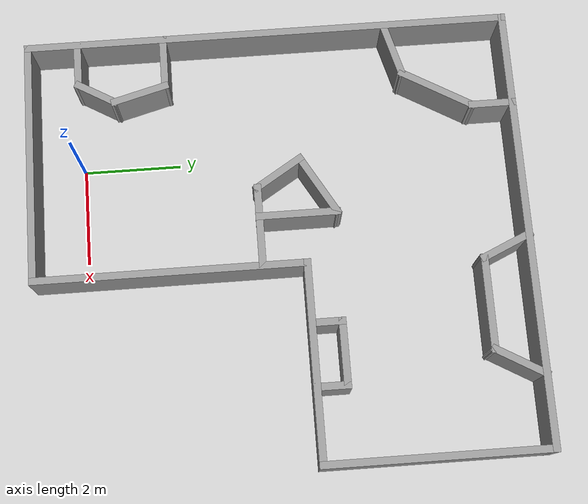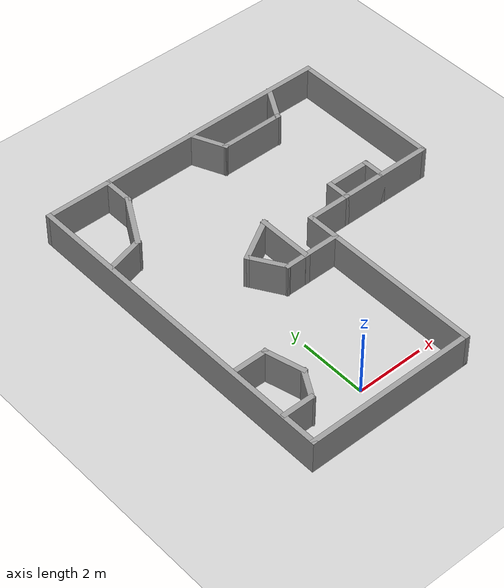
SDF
<sdf version="1.6">
 <world name="default">
  <light name="sun" type="directional">
   <pose>0 0 10 0 -0 0</pose>
   <diffuse>0.8 0.8 0.8 1</diffuse>
   <specular>0.1 0.1 0.1 1</specular>
   <attenuation>
    <range>1000</range>
    <constant>0.9</constant>
    <linear>0.01</linear>
    <quadratic>0.001</quadratic>
   </attenuation>
   <direction>-0.5 0.5 -1</direction>
  </light>
  <model name="ground_plane">
   <static>1</static>
   <link name="link">
    <collision name="collision">
     <geometry><plane><normal>0 0 1</normal><size>100 100</size></plane></geometry>
     <surface><friction><ode><mu>100</mu><mu2>50</mu2></ode></friction></surface>
    </collision>
    <visual name="visual">
     <cast_shadows>0</cast_shadows>
     <geometry><plane><normal>0 0 1</normal><size>100 100</size></plane></geometry>
     <material>
      <script><uri>file://media/materials/scripts/gazebo.material</uri><name>Gazebo/Grey</name></script>
     </material>
    </visual>
   </link>
  </model>
  <gravity>0 0 -9.8</gravity>
  <magnetic_field>6e-06 2.3e-05 -4.2e-05</magnetic_field>
  <atmosphere type="adiabatic"/>
  <physics name="default_physics" default="0" type="ode">
   <max_step_size>0.001</max_step_size>
   <real_time_factor>1</real_time_factor>
   <real_time_update_rate>1000</real_time_update_rate>
  </physics>
  <scene><ambient>0.4 0.4 0.4 1</ambient><background>0.7 0.7 0.7 1</background><shadows>1</shadows></scene>
  <spherical_coordinates>
   <surface_model>EARTH_WGS84</surface_model>
   <latitude_deg>0</latitude_deg>
   <longitude_deg>0</longitude_deg>
   <elevation>0</elevation>
   <heading_deg>0</heading_deg>
  </spherical_coordinates>
  <model name="Untitled">
   <pose>2 4.01385 0 0 -0 0</pose>
   <link name="Wall_0">
    <collision name="Wall_0_Collision">
     <geometry><box><size>10.15 0.15 1</size></box></geometry>
     <pose>0 0 0.5 0 -0 0</pose>
    </collision>
    <visual name="Wall_0_Visual">
     <pose>0 0 0.5 0 -0 0</pose>
     <geometry><box><size>10.15 0.15 1</size></box></geometry>
     <material>
      <script><uri>file://media/materials/scripts/gazebo.material</uri><name>Gazebo/Grey</name></script>
      <ambient>1 1 1 1</ambient>
     </material>
    </visual>
    <pose>-4.5 -0.013848 0 0 0 -1.5708</pose>
   </link>
   <link name="Wall_1">
    <collision name="Wall_1_Collision">
     <geometry><box><size>5.15 0.15 1</size></box></geometry>
     <pose>0 0 0.5 0 -0 0</pose>
    </collision>
    <visual name="Wall_1_Visual">
     <pose>0 0 0.5 0 -0 0</pose>
     <geometry><box><size>5.15 0.15 1</size></box></geometry>
     <material>
      <script><uri>file://media/materials/scripts/gazebo.material</uri><name>Gazebo/Grey</name></script>
      <ambient>1 1 1 1</ambient>
     </material>
    </visual>
    <pose>-2 -5.01385 0 0 -0 0</pose>
   </link>
   <link name="Wall_10">
    <collision name="Wall_10_Collision">
     <geometry><box><size>1 0.15 1</size></box></geometry>
     <pose>0 0 0.5 0 -0 0</pose>
    </collision>
    <visual name="Wall_10_Visual">
     <pose>0 0 0.5 0 -0 0</pose>
     <geometry><box><size>1 0.15 1</size></box></geometry>
     <material>
      <script><uri>file://media/materials/scripts/gazebo.material</uri><name>Gazebo/Grey</name></script>
      <ambient>1 1 1 1</ambient>
     </material>
    </visual>
    <pose>-3.3965 -3.60685 0 0 -0 1.04713</pose>
   </link>
   <link name="Wall_11">
    <collision name="Wall_11_Collision">
     <geometry><box><size>1.25 0.15 1</size></box></geometry>
     <pose>0 0 0.5 0 -0 0</pose>
    </collision>
    <visual name="Wall_11_Visual">
     <pose>0 0 0.5 0 -0 0</pose>
     <geometry><box><size>1.25 0.15 1</size></box></geometry>
     <material>
      <script><uri>file://media/materials/scripts/gazebo.material</uri><name>Gazebo/Grey</name></script>
      <ambient>1 1 1 1</ambient>
     </material>
    </visual>
    <pose>-3.3265 -2.70785 0 0 -0 1.83298</pose>
   </link>
   <link name="Wall_12">
    <collision name="Wall_12_Collision">
     <geometry><box><size>1.181 0.15 1</size></box></geometry>
     <pose>0 0 0.5 0 -0 0</pose>
    </collision>
    <visual name="Wall_12_Visual">
     <pose>0 0 0.5 0 -0 0</pose>
     <geometry><box><size>1.181 0.15 1</size></box></geometry>
     <material>
      <script><uri>file://media/materials/scripts/gazebo.material</uri><name>Gazebo/Grey</name></script>
      <ambient>1 1 1 1</ambient>
     </material>
    </visual>
    <pose>-3.9845 -2.17685 0 0 -0 3.14159</pose>
   </link>
   <link name="Wall_14">
    <collision name="Wall_14_Collision">
     <geometry><box><size>1.75 0.15 1</size></box></geometry>
     <pose>0 0 0.5 0 -0 0</pose>
    </collision>
    <visual name="Wall_14_Visual">
     <pose>0 0 0.5 0 -0 0</pose>
     <geometry><box><size>1.75 0.15 1</size></box></geometry>
     <material>
      <script><uri>file://media/materials/scripts/gazebo.material</uri><name>Gazebo/Grey</name></script>
      <ambient>1 1 1 1</ambient>
     </material>
    </visual>
    <pose>-0.327 -0.406847 0 0 -0 3.14159</pose>
   </link>
   <link name="Wall_15">
    <collision name="Wall_15_Collision">
     <geometry><box><size>1.21334 0.15 1</size></box></geometry>
     <pose>0 0 0.5 0 -0 0</pose>
    </collision>
    <visual name="Wall_15_Visual">
     <pose>0 0 0.5 0 -0 0</pose>
     <geometry><box><size>1.21334 0.15 1</size></box></geometry>
     <material>
      <script><uri>file://media/materials/scripts/gazebo.material</uri><name>Gazebo/Grey</name></script>
      <ambient>1 1 1 1</ambient>
     </material>
    </visual>
    <pose>-1.4075 0.044652 0 0 -0 2.1267</pose>
   </link>
   <link name="Wall_16">
    <collision name="Wall_16_Collision">
     <geometry><box><size>1.5 0.15 1</size></box></geometry>
     <pose>0 0 0.5 0 -0 0</pose>
    </collision>
    <visual name="Wall_16_Visual">
     <pose>0 0 0.5 0 -0 0</pose>
     <geometry><box><size>1.5 0.15 1</size></box></geometry>
     <material>
      <script><uri>file://media/materials/scripts/gazebo.material</uri><name>Gazebo/Grey</name></script>
      <ambient>1 1 1 1</ambient>
     </material>
    </visual>
    <pose>-1.1035 0.833652 0 0 -0 0.523649</pose>
   </link>
   <link name="Wall_17">
    <collision name="Wall_17_Collision">
     <geometry><box><size>1.732 0.15 1</size></box></geometry>
     <pose>0 0 0.5 0 -0 0</pose>
    </collision>
    <visual name="Wall_17_Visual">
     <pose>0 0 0.5 0 -0 0</pose>
     <geometry><box><size>1.732 0.15 1</size></box></geometry>
     <material>
      <script><uri>file://media/materials/scripts/gazebo.material</uri><name>Gazebo/Grey</name></script>
      <ambient>1 1 1 1</ambient>
     </material>
    </visual>
    <pose>-0.519 0.380152 0 0 0 -1.5708</pose>
   </link>
   <link name="Wall_19">
    <collision name="Wall_19_Collision">
     <geometry><box><size>1.25 0.15 1</size></box></geometry>
     <pose>0 0 0.5 0 -0 0</pose>
    </collision>
    <visual name="Wall_19_Visual">
     <pose>0 0 0.5 0 -0 0</pose>
     <geometry><box><size>1.25 0.15 1</size></box></geometry>
     <material>
      <script><uri>file://media/materials/scripts/gazebo.material</uri><name>Gazebo/Grey</name></script>
      <ambient>1 1 1 1</ambient>
     </material>
    </visual>
    <pose>-3.928 2.62115 0 0 -0 0.261306</pose>
   </link>
   <link name="Wall_20">
    <collision name="Wall_20_Collision">
     <geometry><box><size>1.75 0.15 1</size></box></geometry>
     <pose>0 0 0.5 0 -0 0</pose>
    </collision>
    <visual name="Wall_20_Visual">
     <pose>0 0 0.5 0 -0 0</pose>
     <geometry><box><size>1.75 0.15 1</size></box></geometry>
     <material>
      <script><uri>file://media/materials/scripts/gazebo.material</uri><name>Gazebo/Grey</name></script>
      <ambient>1 1 1 1</ambient>
     </material>
    </visual>
    <pose>-2.997 3.45615 0 0 -0 1.04731</pose>
   </link>
   <link name="Wall_22">
    <collision name="Wall_22_Collision">
     <geometry><box><size>0.987 0.15 1</size></box></geometry>
     <pose>0 0 0.5 0 -0 0</pose>
    </collision>
    <visual name="Wall_22_Visual">
     <pose>0 0 0.5 0 -0 0</pose>
     <geometry><box><size>0.987 0.15 1</size></box></geometry>
     <material>
      <script><uri>file://media/materials/scripts/gazebo.material</uri><name>Gazebo/Grey</name></script>
      <ambient>1 1 1 1</ambient>
     </material>
    </visual>
    <pose>-2.597 4.56765 0 0 -0 1.5708</pose>
   </link>
   <link name="Wall_24">
    <collision name="Wall_24_Collision">
     <geometry><box><size>1.25 0.15 1</size></box></geometry>
     <pose>0 0 0.5 0 -0 0</pose>
    </collision>
    <visual name="Wall_24_Visual">
     <pose>0 0 0.5 0 -0 0</pose>
     <geometry><box><size>1.25 0.15 1</size></box></geometry>
     <material>
      <script><uri>file://media/materials/scripts/gazebo.material</uri><name>Gazebo/Grey</name></script>
      <ambient>1 1 1 1</ambient>
     </material>
    </visual>
    <pose>2.779 4.51015 0 0 0 -2.09468</pose>
   </link>
   <link name="Wall_25">
    <collision name="Wall_25_Collision">
     <geometry><box><size>2 0.15 1</size></box></geometry>
     <pose>0 0 0.5 0 -0 0</pose>
    </collision>
    <visual name="Wall_25_Visual">
     <pose>0 0 0.5 0 -0 0</pose>
     <geometry><box><size>2 0.15 1</size></box></geometry>
     <material>
      <script><uri>file://media/materials/scripts/gazebo.material</uri><name>Gazebo/Grey</name></script>
      <ambient>1 1 1 1</ambient>
     </material>
    </visual>
    <pose>1.579 4.03415 0 0 -0 3.14159</pose>
   </link>
   <link name="Wall_26">
    <collision name="Wall_26_Collision">
     <geometry><box><size>1.19256 0.15 1</size></box></geometry>
     <pose>0 0 0.5 0 -0 0</pose>
    </collision>
    <visual name="Wall_26_Visual">
     <pose>0 0 0.5 0 -0 0</pose>
     <geometry><box><size>1.19256 0.15 1</size></box></geometry>
     <material>
      <script><uri>file://media/materials/scripts/gazebo.material</uri><name>Gazebo/Grey</name></script>
      <ambient>1 1 1 1</ambient>
     </material>
    </visual>
    <pose>0.4415 4.51015 0 0 -0 1.99068</pose>
   </link>
   <link name="Wall_28">
    <collision name="Wall_28_Collision">
     <geometry><box><size>0.75 0.15 1</size></box></geometry>
     <pose>0 0 0.5 0 -0 0</pose>
    </collision>
    <visual name="Wall_28_Visual">
     <pose>0 0 0.5 0 -0 0</pose>
     <geometry><box><size>0.75 0.15 1</size></box></geometry>
     <material>
      <script><uri>file://media/materials/scripts/gazebo.material</uri><name>Gazebo/Grey</name></script>
      <ambient>1 1 1 1</ambient>
     </material>
    </visual>
    <pose>1.729 0.786153 0 0 -0 1.5708</pose>
   </link>
   <link name="Wall_29">
    <collision name="Wall_29_Collision">
     <geometry><box><size>1.421 0.15 1</size></box></geometry>
     <pose>0 0 0.5 0 -0 0</pose>
    </collision>
    <visual name="Wall_29_Visual">
     <pose>0 0 0.5 0 -0 0</pose>
     <geometry><box><size>1.421 0.15 1</size></box></geometry>
     <material>
      <script><uri>file://media/materials/scripts/gazebo.material</uri><name>Gazebo/Grey</name></script>
      <ambient>1 1 1 1</ambient>
     </material>
    </visual>
    <pose>2.3645 1.08615 0 0 -0 0</pose>
   </link>
   <link name="Wall_3">
    <collision name="Wall_3_Collision">
     <geometry><box><size>5.65 0.15 1</size></box></geometry>
     <pose>0 0 0.5 0 -0 0</pose>
    </collision>
    <visual name="Wall_3_Visual">
     <pose>0 0 0.5 0 -0 0</pose>
     <geometry><box><size>5.65 0.15 1</size></box></geometry>
     <material>
      <script><uri>file://media/materials/scripts/gazebo.material</uri><name>Gazebo/Grey</name></script>
      <ambient>1 1 1 1</ambient>
     </material>
    </visual>
    <pose>0.5 -2.26385 0 0 -0 1.5708</pose>
   </link>
   <link name="Wall_30">
    <collision name="Wall_30_Collision">
     <geometry><box><size>0.75 0.15 1</size></box></geometry>
     <pose>0 0 0.5 0 -0 0</pose>
    </collision>
    <visual name="Wall_30_Visual">
     <pose>0 0 0.5 0 -0 0</pose>
     <geometry><box><size>0.75 0.15 1</size></box></geometry>
     <material>
      <script><uri>file://media/materials/scripts/gazebo.material</uri><name>Gazebo/Grey</name></script>
      <ambient>1 1 1 1</ambient>
     </material>
    </visual>
    <pose>3 0.786153 0 0 0 -1.5708</pose>
   </link>
   <link name="Wall_4">
    <collision name="Wall_4_Collision">
     <geometry><box><size>4.15 0.15 1</size></box></geometry>
     <pose>0 0 0.5 0 -0 0</pose>
    </collision>
    <visual name="Wall_4_Visual">
     <pose>0 0 0.5 0 -0 0</pose>
     <geometry><box><size>4.15 0.15 1</size></box></geometry>
     <material>
      <script><uri>file://media/materials/scripts/gazebo.material</uri><name>Gazebo/Grey</name></script>
      <ambient>1 1 1 1</ambient>
     </material>
    </visual>
    <pose>2.5 0.486152 0 0 -0 0</pose>
   </link>
   <link name="Wall_5">
    <collision name="Wall_5_Collision">
     <geometry><box><size>4.65 0.15 1</size></box></geometry>
     <pose>0 0 0.5 0 -0 0</pose>
    </collision>
    <visual name="Wall_5_Visual">
     <pose>0 0 0.5 0 -0 0</pose>
     <geometry><box><size>4.65 0.15 1</size></box></geometry>
     <material>
      <script><uri>file://media/materials/scripts/gazebo.material</uri><name>Gazebo/Grey</name></script>
      <ambient>1 1 1 1</ambient>
     </material>
    </visual>
    <pose>4.5 2.73615 0 0 -0 1.5708</pose>
   </link>
   <link name="Wall_7">
    <collision name="Wall_7_Collision">
     <geometry><box><size>9.15 0.15 1</size></box></geometry>
     <pose>0 0 0.5 0 -0 0</pose>
    </collision>
    <visual name="Wall_7_Visual">
     <pose>0 0 0.5 0 -0 0</pose>
     <geometry><box><size>9.15 0.15 1</size></box></geometry>
     <material>
      <script><uri>file://media/materials/scripts/gazebo.material</uri><name>Gazebo/Grey</name></script>
      <ambient>1 1 1 1</ambient>
     </material>
    </visual>
    <pose>0 4.98615 0 0 -0 3.14159</pose>
   </link>
   <link name="Wall_9">
    <collision name="Wall_9_Collision">
     <geometry><box><size>1 0.15 1</size></box></geometry>
     <pose>0 0 0.5 0 -0 0</pose>
    </collision>
    <visual name="Wall_9_Visual">
     <pose>0 0 0.5 0 -0 0</pose>
     <geometry><box><size>1 0.15 1</size></box></geometry>
     <material>
      <script><uri>file://media/materials/scripts/gazebo.material</uri><name>Gazebo/Grey</name></script>
      <ambient>1 1 1 1</ambient>
     </material>
    </visual>
    <pose>-4.034 -3.97485 0 0 -0 0</pose>
   </link>
   <static>1</static>
  </model>
 </world>
</sdf>
